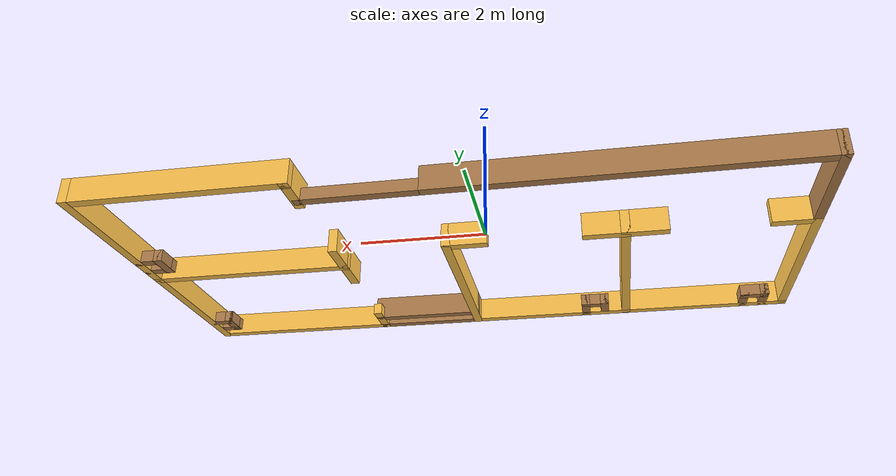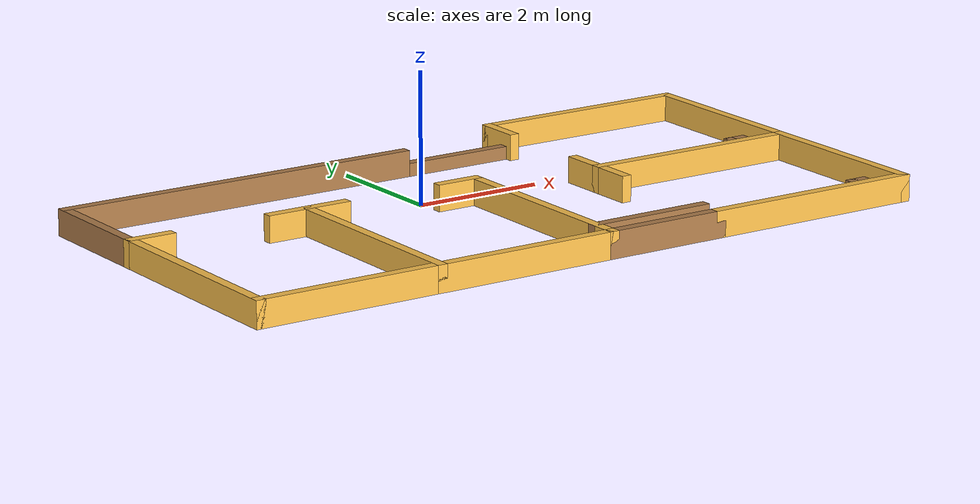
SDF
<?xml version='1.0'?>
<sdf version='1.6'>
  <model name='infections_hospital'>
    <pose frame=''>0.45 -0.86 0 0 -0 0</pose>
    <link name='Wall_0'>
      <collision name='Wall_0_Collision'>
        <geometry>
          <box>
            <size>3.5 0.15 0.4</size>
          </box>
        </geometry>
        <pose frame=''>0 0 0.2 0 -0 0</pose>
      </collision>
      <visual name='Wall_0_Visual'>
        <pose frame=''>0 0 0.2 0 -0 0</pose>
        <geometry>
          <box>
            <size>3.5 0.15 0.4</size>
          </box>
        </geometry>
        <material>
          <script>
            <uri>file://media/materials/scripts/gazebo.material</uri>
            <name>Gazebo/Grey</name>
          </script>
          <ambient>1 0.764706 0.305882 1</ambient>
        </material>
        <meta>
          <layer>0</layer>
        </meta>
      </visual>
      <pose frame=''>-5.45 -1.175 0 0 -0 -1.5708</pose>
    </link>
    <link name='Wall_1'>
      <collision name='Wall_1_Collision'>
        <geometry>
          <box>
            <size>3 0.15 0.4</size>
          </box>
        </geometry>
        <pose frame=''>0 0 0.2 0 -0 0</pose>
      </collision>
      <visual name='Wall_1_Visual'>
        <pose frame=''>0 0 0.2 0 -0 0</pose>
        <geometry>
          <box>
            <size>3 0.15 0.4</size>
          </box>
        </geometry>
        <material>
          <script>
            <uri>file://media/materials/scripts/gazebo.material</uri>
            <name>Gazebo/Grey</name>
          </script>
          <ambient>1 0.764706 0.305882 1</ambient>
        </material>
        <meta>
          <layer>0</layer>
        </meta>
      </visual>
      <pose frame=''>-4.025 -2.85 0 0 -0 0</pose>
    </link>
    <link name='Wall_10'>
      <collision name='Wall_10_Collision'>
        <geometry>
          <box>
            <size>0.75 0.15 0.4</size>
          </box>
        </geometry>
        <pose frame=''>0 0 0.2 0 -0 0</pose>
      </collision>
      <visual name='Wall_10_Visual'>
        <pose frame=''>0 0 0.2 0 -0 0</pose>
        <geometry>
          <box>
            <size>0.75 0.15 0.4</size>
          </box>
        </geometry>
        <material>
          <script>
            <uri>file://media/materials/scripts/gazebo.material</uri>
            <name>Gazebo/Grey</name>
          </script>
          <ambient>1 0.764706 0.305882 1</ambient>
        </material>
        <meta>
          <layer>0</layer>
        </meta>
      </visual>
      <pose frame=''>-0.05 0.5 0 0 -0 3.14159</pose>
    </link>
    <link name='Wall_12'>
      <collision name='Wall_12_Collision'>
        <geometry>
          <box>
            <size>0.75 0.15 0.4</size>
          </box>
        </geometry>
        <pose frame=''>0 0 0.2 0 -0 0</pose>
      </collision>
      <visual name='Wall_12_Visual'>
        <pose frame=''>0 0 0.2 0 -0 0</pose>
        <geometry>
          <box>
            <size>0.75 0.15 0.4</size>
          </box>
        </geometry>
        <material>
          <script>
            <uri>file://media/materials/scripts/gazebo.material</uri>
            <name>Gazebo/Grey</name>
          </script>
          <ambient>1 0.764706 0.305882 1</ambient>
        </material>
        <meta>
          <layer>0</layer>
        </meta>
      </visual>
      <pose frame=''>-2.3 0.5 0 0 -0 0</pose>
    </link>
    <link name='Wall_15'>
      <collision name='Wall_15_Collision'>
        <geometry>
          <box>
            <size>2 0.15 0.4</size>
          </box>
        </geometry>
        <pose frame=''>0 0 0.2 0 -0 0</pose>
      </collision>
      <visual name='Wall_15_Visual'>
        <pose frame=''>0 0 0.2 0 -0 0</pose>
        <geometry>
          <box>
            <size>2 0.15 0.4</size>
          </box>
        </geometry>
        <material>
          <script>
            <uri>file://media/materials/scripts/gazebo.material</uri>
            <name>Gazebo/Wood</name>
          </script>
          <ambient>1 1 1 1</ambient>
        </material>
        <meta>
          <layer>0</layer>
        </meta>
      </visual>
      <pose frame=''>-5.45 1.425 0 0 -0 1.5708</pose>
    </link>
    <link name='Wall_17'>
      <collision name='Wall_17_Collision'>
        <geometry>
          <box>
            <size>2 0.15 0.4</size>
          </box>
        </geometry>
        <pose frame=''>0 0 0.2 0 -0 0</pose>
      </collision>
      <visual name='Wall_17_Visual'>
        <pose frame=''>0 0 0.2 0 -0 0</pose>
        <geometry>
          <box>
            <size>2 0.15 0.4</size>
          </box>
        </geometry>
        <material>
          <script>
            <uri>file://media/materials/scripts/gazebo.material</uri>
            <name>Gazebo/Wood</name>
          </script>
          <ambient>1 1 1 1</ambient>
        </material>
        <meta>
          <layer>0</layer>
        </meta>
      </visual>
      <pose frame=''>1.175 -2.85 0 0 -0 0</pose>
    </link>
    <link name='Wall_19'>
      <collision name='Wall_19_Collision'>
        <geometry>
          <box>
            <size>0.75 0.15 0.2</size>
          </box>
        </geometry>
        <pose frame=''>0 0 0.1 0 -0 0</pose>
      </collision>
      <visual name='Wall_19_Visual'>
        <pose frame=''>0 0 0.1 0 -0 0</pose>
        <geometry>
          <box>
            <size>0.75 0.15 0.2</size>
          </box>
        </geometry>
        <material>
          <script>
            <uri>file://media/materials/scripts/gazebo.material</uri>
            <name>Gazebo/Grey</name>
          </script>
          <ambient>1 0.764706 0.305882 1</ambient>
        </material>
        <meta>
          <layer>0</layer>
        </meta>
      </visual>
      <pose frame=''>2.1 -2.55 0 0 -0 1.5708</pose>
    </link>
    <link name='Wall_2'>
      <collision name='Wall_2_Collision'>
        <geometry>
          <box>
            <size>3.5 0.15 0.4</size>
          </box>
        </geometry>
        <pose frame=''>0 0 0.2 0 -0 0</pose>
      </collision>
      <visual name='Wall_2_Visual'>
        <pose frame=''>0 0 0.2 0 -0 0</pose>
        <geometry>
          <box>
            <size>3.5 0.15 0.4</size>
          </box>
        </geometry>
        <material>
          <script>
            <uri>file://media/materials/scripts/gazebo.material</uri>
            <name>Gazebo/Grey</name>
          </script>
          <ambient>1 0.764706 0.305882 1</ambient>
        </material>
        <meta>
          <layer>0</layer>
        </meta>
      </visual>
      <pose frame=''>-2.6 -1.175 0 0 -0 1.5708</pose>
    </link>
    <link name='Wall_24'>
      <collision name='Wall_24_Collision'>
        <geometry>
          <box>
            <size>0.75 0.15 0.4</size>
          </box>
        </geometry>
        <pose frame=''>0 0 0.2 0 -0 0</pose>
      </collision>
      <visual name='Wall_24_Visual'>
        <pose frame=''>0 0 0.2 0 -0 0</pose>
        <geometry>
          <box>
            <size>0.75 0.15 0.4</size>
          </box>
        </geometry>
        <material>
          <script>
            <uri>file://media/materials/scripts/gazebo.material</uri>
            <name>Gazebo/Grey</name>
          </script>
          <ambient>1 0.764706 0.305882 1</ambient>
        </material>
        <meta>
          <layer>0</layer>
        </meta>
      </visual>
      <pose frame=''>2.1 -0.3 0 0 -0 -1.5708</pose>
    </link>
    <link name='Wall_27'>
      <collision name='Wall_27_Collision'>
        <geometry>
          <box>
            <size>3.5 0.15 0.4</size>
          </box>
        </geometry>
        <pose frame=''>0 0 0.2 0 -0 0</pose>
      </collision>
      <visual name='Wall_27_Visual'>
        <pose frame=''>0 0 0.2 0 -0 0</pose>
        <geometry>
          <box>
            <size>3.5 0.15 0.4</size>
          </box>
        </geometry>
        <material>
          <script>
            <uri>file://media/materials/scripts/gazebo.material</uri>
            <name>Gazebo/Grey</name>
          </script>
          <ambient>1 0.764706 0.305882 1</ambient>
        </material>
        <meta>
          <layer>0</layer>
        </meta>
      </visual>
      <pose frame=''>3.775 2.85 0 0 -0 3.14159</pose>
    </link>
    <link name='Wall_3'>
      <collision name='Wall_3_Collision'>
        <geometry>
          <box>
            <size>0.75 0.15 0.4</size>
          </box>
        </geometry>
        <pose frame=''>0 0 0.2 0 -0 0</pose>
      </collision>
      <visual name='Wall_3_Visual'>
        <pose frame=''>0 0 0.2 0 -0 0</pose>
        <geometry>
          <box>
            <size>0.75 0.15 0.4</size>
          </box>
        </geometry>
        <material>
          <script>
            <uri>file://media/materials/scripts/gazebo.material</uri>
            <name>Gazebo/Grey</name>
          </script>
          <ambient>1 0.764706 0.305882 1</ambient>
        </material>
        <meta>
          <layer>0</layer>
        </meta>
      </visual>
      <pose frame=''>-2.9 0.5 0 0 -0 3.14159</pose>
    </link>
    <link name='Wall_30'>
      <collision name='Wall_30_Collision'>
        <geometry>
          <box>
            <size>0.75 0.15 0.4</size>
          </box>
        </geometry>
        <pose frame=''>0 0 0.2 0 -0 0</pose>
      </collision>
      <visual name='Wall_30_Visual'>
        <pose frame=''>0 0 0.2 0 -0 0</pose>
        <geometry>
          <box>
            <size>0.75 0.15 0.4</size>
          </box>
        </geometry>
        <material>
          <script>
            <uri>file://media/materials/scripts/gazebo.material</uri>
            <name>Gazebo/Grey</name>
          </script>
          <ambient>1 0.764706 0.305882 1</ambient>
        </material>
        <meta>
          <layer>0</layer>
        </meta>
      </visual>
      <pose frame=''>2.1 2.55 0 0 -0 -1.5708</pose>
    </link>
    <link name='Wall_32'>
      <collision name='Wall_32_Collision'>
        <geometry>
          <box>
            <size>0.75 0.15 0.4</size>
          </box>
        </geometry>
        <pose frame=''>0 0 0.2 0 -0 0</pose>
      </collision>
      <visual name='Wall_32_Visual'>
        <pose frame=''>0 0 0.2 0 -0 0</pose>
        <geometry>
          <box>
            <size>0.75 0.15 0.4</size>
          </box>
        </geometry>
        <material>
          <script>
            <uri>file://media/materials/scripts/gazebo.material</uri>
            <name>Gazebo/Grey</name>
          </script>
          <ambient>1 0.764706 0.305882 1</ambient>
        </material>
        <meta>
          <layer>0</layer>
        </meta>
      </visual>
      <pose frame=''>2.1 0.3 0 0 -0 1.5708</pose>
    </link>
    <link name='Wall_34'>
      <collision name='Wall_34_Collision'>
        <geometry>
          <box>
            <size>5.81 0.15 0.4</size>
          </box>
        </geometry>
        <pose frame=''>0 0 0.2 0 -0 0</pose>
      </collision>
      <visual name='Wall_34_Visual'>
        <pose frame=''>0 0 0.2 0 -0 0</pose>
        <geometry>
          <box>
            <size>5.81 0.15 0.4</size>
          </box>
        </geometry>
        <material>
          <script>
            <uri>file://media/materials/scripts/gazebo.material</uri>
            <name>Gazebo/Wood</name>
          </script>
          <ambient>1 1 1 1</ambient>
        </material>
        <meta>
          <layer>0</layer>
        </meta>
      </visual>
      <pose frame=''>-2.62 2.35 0 0 -0 0</pose>
    </link>
    <link name='Wall_38'>
      <collision name='Wall_38_Collision'>
        <geometry>
          <box>
            <size>2.01 0.15 0.2</size>
          </box>
        </geometry>
        <pose frame=''>0 0 0.1 0 -0 0</pose>
      </collision>
      <visual name='Wall_38_Visual'>
        <pose frame=''>0 0 0.1 0 -0 0</pose>
        <geometry>
          <box>
            <size>2.01 0.15 0.2</size>
          </box>
        </geometry>
        <material>
          <script>
            <uri>file://media/materials/scripts/gazebo.material</uri>
            <name>Gazebo/Wood</name>
          </script>
          <ambient>1 1 1 1</ambient>
        </material>
        <meta>
          <layer>0</layer>
        </meta>
      </visual>
      <pose frame=''>1.14 2.35 0 0 -0 0</pose>
    </link>
    <link name='Wall_40'>
      <collision name='Wall_40_Collision'>
        <geometry>
          <box>
            <size>0.5 0.15 0.2</size>
          </box>
        </geometry>
        <pose frame=''>0 0 0.1 0 -0 0</pose>
      </collision>
      <visual name='Wall_40_Visual'>
        <pose frame=''>0 0 0.1 0 -0 0</pose>
        <geometry>
          <box>
            <size>0.5 0.15 0.2</size>
          </box>
        </geometry>
        <material>
          <script>
            <uri>file://media/materials/scripts/gazebo.material</uri>
            <name>Gazebo/Wood</name>
          </script>
          <ambient>1 1 1 1</ambient>
        </material>
        <meta>
          <layer>0</layer>
        </meta>
      </visual>
      <pose frame=''>-5.09 -2.625 0 0 -0 1.5708</pose>
    </link>
    <link name='Wall_41'>
      <collision name='Wall_41_Collision'>
        <geometry>
          <box>
            <size>0.5 0.15 0.2</size>
          </box>
        </geometry>
        <pose frame=''>0 0 0.1 0 -0 0</pose>
      </collision>
      <visual name='Wall_41_Visual'>
        <pose frame=''>0 0 0.1 0 -0 0</pose>
        <geometry>
          <box>
            <size>0.5 0.15 0.2</size>
          </box>
        </geometry>
        <material>
          <script>
            <uri>file://media/materials/scripts/gazebo.material</uri>
            <name>Gazebo/Wood</name>
          </script>
          <ambient>1 1 1 1</ambient>
        </material>
        <meta>
          <layer>0</layer>
        </meta>
      </visual>
      <pose frame=''>-4.915 -2.45 0 0 -0 0</pose>
    </link>
    <link name='Wall_42'>
      <collision name='Wall_42_Collision'>
        <geometry>
          <box>
            <size>0.5 0.15 0.2</size>
          </box>
        </geometry>
        <pose frame=''>0 0 0.1 0 -0 0</pose>
      </collision>
      <visual name='Wall_42_Visual'>
        <pose frame=''>0 0 0.1 0 -0 0</pose>
        <geometry>
          <box>
            <size>0.5 0.15 0.2</size>
          </box>
        </geometry>
        <material>
          <script>
            <uri>file://media/materials/scripts/gazebo.material</uri>
            <name>Gazebo/Wood</name>
          </script>
          <ambient>1 1 1 1</ambient>
        </material>
        <meta>
          <layer>0</layer>
        </meta>
      </visual>
      <pose frame=''>-4.74 -2.625 0 0 -0 -1.5708</pose>
    </link>
    <link name='Wall_44'>
      <collision name='Wall_44_Collision'>
        <geometry>
          <box>
            <size>0.5 0.15 0.2</size>
          </box>
        </geometry>
        <pose frame=''>0 0 0.1 0 -0 0</pose>
      </collision>
      <visual name='Wall_44_Visual'>
        <pose frame=''>0 0 0.1 0 -0 0</pose>
        <geometry>
          <box>
            <size>0.5 0.15 0.2</size>
          </box>
        </geometry>
        <material>
          <script>
            <uri>file://media/materials/scripts/gazebo.material</uri>
            <name>Gazebo/Wood</name>
          </script>
          <ambient>1 1 1 1</ambient>
        </material>
        <meta>
          <layer>0</layer>
        </meta>
      </visual>
      <pose frame=''>-2.21 -2.625 0 0 -0 1.5708</pose>
    </link>
    <link name='Wall_45'>
      <collision name='Wall_45_Collision'>
        <geometry>
          <box>
            <size>0.5 0.15 0.2</size>
          </box>
        </geometry>
        <pose frame=''>0 0 0.1 0 -0 0</pose>
      </collision>
      <visual name='Wall_45_Visual'>
        <pose frame=''>0 0 0.1 0 -0 0</pose>
        <geometry>
          <box>
            <size>0.5 0.15 0.2</size>
          </box>
        </geometry>
        <material>
          <script>
            <uri>file://media/materials/scripts/gazebo.material</uri>
            <name>Gazebo/Wood</name>
          </script>
          <ambient>1 1 1 1</ambient>
        </material>
        <meta>
          <layer>0</layer>
        </meta>
      </visual>
      <pose frame=''>-2.035 -2.45 0 0 -0 0</pose>
    </link>
    <link name='Wall_46'>
      <collision name='Wall_46_Collision'>
        <geometry>
          <box>
            <size>0.5 0.15 0.2</size>
          </box>
        </geometry>
        <pose frame=''>0 0 0.1 0 -0 0</pose>
      </collision>
      <visual name='Wall_46_Visual'>
        <pose frame=''>0 0 0.1 0 -0 0</pose>
        <geometry>
          <box>
            <size>0.5 0.15 0.2</size>
          </box>
        </geometry>
        <material>
          <script>
            <uri>file://media/materials/scripts/gazebo.material</uri>
            <name>Gazebo/Wood</name>
          </script>
          <ambient>1 1 1 1</ambient>
        </material>
        <meta>
          <layer>0</layer>
        </meta>
      </visual>
      <pose frame=''>-1.86 -2.625 0 0 -0 -1.5708</pose>
    </link>
    <link name='Wall_48'>
      <collision name='Wall_48_Collision'>
        <geometry>
          <box>
            <size>0.5 0.15 0.2</size>
          </box>
        </geometry>
        <pose frame=''>0 0 0.1 0 -0 0</pose>
      </collision>
      <visual name='Wall_48_Visual'>
        <pose frame=''>0 0 0.1 0 -0 0</pose>
        <geometry>
          <box>
            <size>0.5 0.15 0.2</size>
          </box>
        </geometry>
        <material>
          <script>
            <uri>file://media/materials/scripts/gazebo.material</uri>
            <name>Gazebo/Wood</name>
          </script>
          <ambient>1 1 1 1</ambient>
        </material>
        <meta>
          <layer>0</layer>
        </meta>
      </visual>
      <pose frame=''>5.275 -2.51 0 0 -0 3.14159</pose>
    </link>
    <link name='Wall_49'>
      <collision name='Wall_49_Collision'>
        <geometry>
          <box>
            <size>0.5 0.15 0.2</size>
          </box>
        </geometry>
        <pose frame=''>0 0 0.1 0 -0 0</pose>
      </collision>
      <visual name='Wall_49_Visual'>
        <pose frame=''>0 0 0.1 0 -0 0</pose>
        <geometry>
          <box>
            <size>0.5 0.15 0.2</size>
          </box>
        </geometry>
        <material>
          <script>
            <uri>file://media/materials/scripts/gazebo.material</uri>
            <name>Gazebo/Wood</name>
          </script>
          <ambient>1 1 1 1</ambient>
        </material>
        <meta>
          <layer>0</layer>
        </meta>
      </visual>
      <pose frame=''>5.1 -2.335 0 0 -0 1.5708</pose>
    </link>
    <link name='Wall_5'>
      <collision name='Wall_5_Collision'>
        <geometry>
          <box>
            <size>0.75 0.15 0.4</size>
          </box>
        </geometry>
        <pose frame=''>0 0 0.2 0 -0 0</pose>
      </collision>
      <visual name='Wall_5_Visual'>
        <pose frame=''>0 0 0.2 0 -0 0</pose>
        <geometry>
          <box>
            <size>0.75 0.15 0.4</size>
          </box>
        </geometry>
        <material>
          <script>
            <uri>file://media/materials/scripts/gazebo.material</uri>
            <name>Gazebo/Grey</name>
          </script>
          <ambient>1 0.764706 0.305882 1</ambient>
        </material>
        <meta>
          <layer>0</layer>
        </meta>
      </visual>
      <pose frame=''>-5.15 0.5 0 0 -0 0</pose>
    </link>
    <link name='Wall_50'>
      <collision name='Wall_50_Collision'>
        <geometry>
          <box>
            <size>0.5 0.15 0.2</size>
          </box>
        </geometry>
        <pose frame=''>0 0 0.1 0 -0 0</pose>
      </collision>
      <visual name='Wall_50_Visual'>
        <pose frame=''>0 0 0.1 0 -0 0</pose>
        <geometry>
          <box>
            <size>0.5 0.15 0.2</size>
          </box>
        </geometry>
        <material>
          <script>
            <uri>file://media/materials/scripts/gazebo.material</uri>
            <name>Gazebo/Wood</name>
          </script>
          <ambient>1 1 1 1</ambient>
        </material>
        <meta>
          <layer>0</layer>
        </meta>
      </visual>
      <pose frame=''>5.275 -2.16 0 0 -0 0</pose>
    </link>
    <link name='Wall_56'>
      <collision name='Wall_56_Collision'>
        <geometry>
          <box>
            <size>0.5 0.15 0.2</size>
          </box>
        </geometry>
        <pose frame=''>0 0 0.1 0 -0 0</pose>
      </collision>
      <visual name='Wall_56_Visual'>
        <pose frame=''>0 0 0.1 0 -0 0</pose>
        <geometry>
          <box>
            <size>0.5 0.15 0.2</size>
          </box>
        </geometry>
        <material>
          <script>
            <uri>file://media/materials/scripts/gazebo.material</uri>
            <name>Gazebo/Wood</name>
          </script>
          <ambient>1 1 1 1</ambient>
        </material>
        <meta>
          <layer>0</layer>
        </meta>
      </visual>
      <pose frame=''>5.255 0.38 0 0 -0 3.14159</pose>
    </link>
    <link name='Wall_57'>
      <collision name='Wall_57_Collision'>
        <geometry>
          <box>
            <size>0.5 0.15 0.2</size>
          </box>
        </geometry>
        <pose frame=''>0 0 0.1 0 -0 0</pose>
      </collision>
      <visual name='Wall_57_Visual'>
        <pose frame=''>0 0 0.1 0 -0 0</pose>
        <geometry>
          <box>
            <size>0.5 0.15 0.2</size>
          </box>
        </geometry>
        <material>
          <script>
            <uri>file://media/materials/scripts/gazebo.material</uri>
            <name>Gazebo/Wood</name>
          </script>
          <ambient>1 1 1 1</ambient>
        </material>
        <meta>
          <layer>0</layer>
        </meta>
      </visual>
      <pose frame=''>5.08 0.555 0 0 -0 1.5708</pose>
    </link>
    <link name='Wall_58'>
      <collision name='Wall_58_Collision'>
        <geometry>
          <box>
            <size>0.5 0.15 0.2</size>
          </box>
        </geometry>
        <pose frame=''>0 0 0.1 0 -0 0</pose>
      </collision>
      <visual name='Wall_58_Visual'>
        <pose frame=''>0 0 0.1 0 -0 0</pose>
        <geometry>
          <box>
            <size>0.5 0.15 0.2</size>
          </box>
        </geometry>
        <material>
          <script>
            <uri>file://media/materials/scripts/gazebo.material</uri>
            <name>Gazebo/Wood</name>
          </script>
          <ambient>1 1 1 1</ambient>
        </material>
        <meta>
          <layer>0</layer>
        </meta>
      </visual>
      <pose frame=''>5.255 0.73 0 0 -0 0</pose>
    </link>
    <link name='Wall_64'>
      <collision name='Wall_64_Collision'>
        <geometry>
          <box>
            <size>2 0.15 0.4</size>
          </box>
        </geometry>
        <pose frame=''>0 0 0.2 0 -0 0</pose>
      </collision>
      <visual name='Wall_64_Visual'>
        <pose frame=''>0 0 0.2 0 -0 0</pose>
        <geometry>
          <box>
            <size>2 0.15 0.4</size>
          </box>
        </geometry>
        <material>
          <script>
            <uri>file://media/materials/scripts/gazebo.material</uri>
            <name>Gazebo/Wood</name>
          </script>
          <ambient>1 1 1 1</ambient>
        </material>
        <meta>
          <layer>0</layer>
        </meta>
      </visual>
      <pose frame=''>1.175 -2.47 0 0 -0 0</pose>
    </link>
    <link name='Wall_66'>
      <collision name='Wall_66_Collision'>
        <geometry>
          <box>
            <size>3 0.15 0.4</size>
          </box>
        </geometry>
        <pose frame=''>0 0 0.2 0 -0 0</pose>
      </collision>
      <visual name='Wall_66_Visual'>
        <pose frame=''>0 0 0.2 0 -0 0</pose>
        <geometry>
          <box>
            <size>3 0.15 0.4</size>
          </box>
        </geometry>
        <material>
          <script>
            <uri>file://media/materials/scripts/gazebo.material</uri>
            <name>Gazebo/Grey</name>
          </script>
          <ambient>1 0.764706 0.305882 1</ambient>
        </material>
        <meta>
          <layer>0</layer>
        </meta>
      </visual>
      <pose frame=''>5.45 1.425 0 0 -0 -1.5708</pose>
    </link>
    <link name='Wall_67'>
      <collision name='Wall_67_Collision'>
        <geometry>
          <box>
            <size>3.5 0.15 0.4</size>
          </box>
        </geometry>
        <pose frame=''>0 0 0.2 0 -0 0</pose>
      </collision>
      <visual name='Wall_67_Visual'>
        <pose frame=''>0 0 0.2 0 -0 0</pose>
        <geometry>
          <box>
            <size>3.5 0.15 0.4</size>
          </box>
        </geometry>
        <material>
          <script>
            <uri>file://media/materials/scripts/gazebo.material</uri>
            <name>Gazebo/Grey</name>
          </script>
          <ambient>1 0.764706 0.305882 1</ambient>
        </material>
        <meta>
          <layer>0</layer>
        </meta>
      </visual>
      <pose frame=''>3.775 0 0 0 -0 3.14159</pose>
    </link>
    <link name='Wall_69'>
      <collision name='Wall_69_Collision'>
        <geometry>
          <box>
            <size>3.5 0.15 0.4</size>
          </box>
        </geometry>
        <pose frame=''>0 0 0.2 0 -0 0</pose>
      </collision>
      <visual name='Wall_69_Visual'>
        <pose frame=''>0 0 0.2 0 -0 0</pose>
        <geometry>
          <box>
            <size>3.5 0.15 0.4</size>
          </box>
        </geometry>
        <material>
          <script>
            <uri>file://media/materials/scripts/gazebo.material</uri>
            <name>Gazebo/Grey</name>
          </script>
          <ambient>1 0.764706 0.305882 1</ambient>
        </material>
        <meta>
          <layer>0</layer>
        </meta>
      </visual>
      <pose frame=''>3.775 -2.85 0 0 -0 0</pose>
    </link>
    <link name='Wall_7'>
      <collision name='Wall_7_Collision'>
        <geometry>
          <box>
            <size>3 0.15 0.4</size>
          </box>
        </geometry>
        <pose frame=''>0 0 0.2 0 -0 0</pose>
      </collision>
      <visual name='Wall_7_Visual'>
        <pose frame=''>0 0 0.2 0 -0 0</pose>
        <geometry>
          <box>
            <size>3 0.15 0.4</size>
          </box>
        </geometry>
        <material>
          <script>
            <uri>file://media/materials/scripts/gazebo.material</uri>
            <name>Gazebo/Grey</name>
          </script>
          <ambient>1 0.764706 0.305882 1</ambient>
        </material>
        <meta>
          <layer>0</layer>
        </meta>
      </visual>
      <pose frame=''>-1.175 -2.85 0 0 -0 0</pose>
    </link>
    <link name='Wall_70'>
      <collision name='Wall_70_Collision'>
        <geometry>
          <box>
            <size>3 0.15 0.4</size>
          </box>
        </geometry>
        <pose frame=''>0 0 0.2 0 -0 0</pose>
      </collision>
      <visual name='Wall_70_Visual'>
        <pose frame=''>0 0 0.2 0 -0 0</pose>
        <geometry>
          <box>
            <size>3 0.15 0.4</size>
          </box>
        </geometry>
        <material>
          <script>
            <uri>file://media/materials/scripts/gazebo.material</uri>
            <name>Gazebo/Grey</name>
          </script>
          <ambient>1 0.764706 0.305882 1</ambient>
        </material>
        <meta>
          <layer>0</layer>
        </meta>
      </visual>
      <pose frame=''>5.45 -1.425 0 0 -0 1.5708</pose>
    </link>
    <link name='Wall_9'>
      <collision name='Wall_9_Collision'>
        <geometry>
          <box>
            <size>3.5 0.15 0.4</size>
          </box>
        </geometry>
        <pose frame=''>0 0 0.2 0 -0 0</pose>
      </collision>
      <visual name='Wall_9_Visual'>
        <pose frame=''>0 0 0.2 0 -0 0</pose>
        <geometry>
          <box>
            <size>3.5 0.15 0.4</size>
          </box>
        </geometry>
        <material>
          <script>
            <uri>file://media/materials/scripts/gazebo.material</uri>
            <name>Gazebo/Grey</name>
          </script>
          <ambient>1 0.764706 0.305882 1</ambient>
        </material>
        <meta>
          <layer>0</layer>
        </meta>
      </visual>
      <pose frame=''>0.25 -1.175 0 0 -0 1.5708</pose>
    </link>
    <static>1</static>
  </model>
</sdf>
